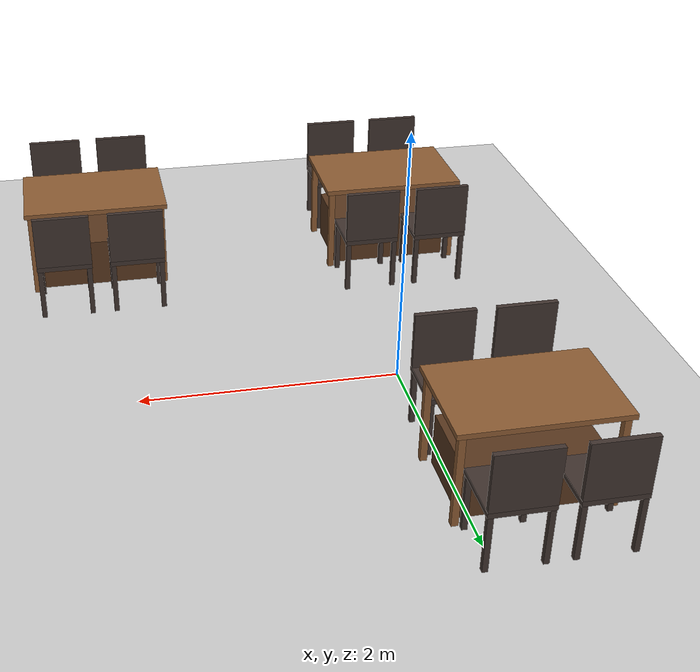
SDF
<sdf version="1.6">
 <world name="restaurant">
  <model name="ground_plane">
   <static>1</static>
   <link name="link">
    <collision name="collision">
     <geometry><plane><normal>0 0 1</normal><size>100 100</size></plane></geometry>
     <surface><friction><ode><mu>100</mu><mu2>50</mu2></ode></friction></surface>
    </collision>
    <visual name="visual">
     <cast_shadows>0</cast_shadows>
     <geometry><plane><normal>0 0 1</normal><size>100 100</size></plane></geometry>
     <material>
      <script><uri>file://media/materials/scripts/gazebo.material</uri><name>Gazebo/Grey</name></script>
     </material>
    </visual>
   </link>
  </model>
  <model name="table_3">
   <static>true</static>
   <pose>-0.4360 1.4091 0 0 0 0</pose>
   <link name="link">
    <collision name="base_collision">
     <pose>0.0000 0.0000 0.2000 0 0 0</pose>
     <geometry><box><size>1.0000 0.6000 0.4000</size></box></geometry>
    </collision>
    <visual name="base_visual">
     <pose>0.0000 0.0000 0.2000 0 0 0</pose>
     <geometry><box><size>1.0000 0.6000 0.4000</size></box></geometry>
     <material>
      <ambient>0.35 0.22 0.12 1</ambient>
      <diffuse>0.35 0.22 0.12 1</diffuse>
      <specular>0.05 0.05 0.05 1</specular>
     </material>
    </visual>
    <collision name="top_collision">
     <pose>0.0000 0.0000 0.7300 0 0 0</pose>
     <geometry><box><size>1.2000 0.8000 0.0400</size></box></geometry>
    </collision>
    <visual name="top_visual">
     <pose>0.0000 0.0000 0.7300 0 0 0</pose>
     <geometry><box><size>1.2000 0.8000 0.0400</size></box></geometry>
     <material>
      <ambient>0.55 0.36 0.2 1</ambient>
      <diffuse>0.55 0.36 0.2 1</diffuse>
      <specular>0.05 0.05 0.05 1</specular>
     </material>
    </visual>
    <collision name="leg0_collision">
     <pose>0.5500 0.3500 0.3550 0 0 0</pose>
     <geometry><box><size>0.0500 0.0500 0.7100</size></box></geometry>
    </collision>
    <visual name="leg0_visual">
     <pose>0.5500 0.3500 0.3550 0 0 0</pose>
     <geometry><box><size>0.0500 0.0500 0.7100</size></box></geometry>
     <material>
      <ambient>0.55 0.36 0.2 1</ambient>
      <diffuse>0.55 0.36 0.2 1</diffuse>
      <specular>0.05 0.05 0.05 1</specular>
     </material>
    </visual>
    <collision name="leg1_collision">
     <pose>0.5500 -0.3500 0.3550 0 0 0</pose>
     <geometry><box><size>0.0500 0.0500 0.7100</size></box></geometry>
    </collision>
    <visual name="leg1_visual">
     <pose>0.5500 -0.3500 0.3550 0 0 0</pose>
     <geometry><box><size>0.0500 0.0500 0.7100</size></box></geometry>
     <material>
      <ambient>0.55 0.36 0.2 1</ambient>
      <diffuse>0.55 0.36 0.2 1</diffuse>
      <specular>0.05 0.05 0.05 1</specular>
     </material>
    </visual>
    <collision name="leg2_collision">
     <pose>-0.5500 0.3500 0.3550 0 0 0</pose>
     <geometry><box><size>0.0500 0.0500 0.7100</size></box></geometry>
    </collision>
    <visual name="leg2_visual">
     <pose>-0.5500 0.3500 0.3550 0 0 0</pose>
     <geometry><box><size>0.0500 0.0500 0.7100</size></box></geometry>
     <material>
      <ambient>0.55 0.36 0.2 1</ambient>
      <diffuse>0.55 0.36 0.2 1</diffuse>
      <specular>0.05 0.05 0.05 1</specular>
     </material>
    </visual>
    <collision name="leg3_collision">
     <pose>-0.5500 -0.3500 0.3550 0 0 0</pose>
     <geometry><box><size>0.0500 0.0500 0.7100</size></box></geometry>
    </collision>
    <visual name="leg3_visual">
     <pose>-0.5500 -0.3500 0.3550 0 0 0</pose>
     <geometry><box><size>0.0500 0.0500 0.7100</size></box></geometry>
     <material>
      <ambient>0.55 0.36 0.2 1</ambient>
      <diffuse>0.55 0.36 0.2 1</diffuse>
      <specular>0.05 0.05 0.05 1</specular>
     </material>
    </visual>
    <collision name="chair0_seat_collision">
     <pose>-0.3000 0.6000 0.4500 0 0 0</pose>
     <geometry><box><size>0.4500 0.4500 0.0400</size></box></geometry>
    </collision>
    <visual name="chair0_seat_visual">
     <pose>-0.3000 0.6000 0.4500 0 0 0</pose>
     <geometry><box><size>0.4500 0.4500 0.0400</size></box></geometry>
     <material>
      <ambient>0.25 0.2 0.18 1</ambient>
      <diffuse>0.25 0.2 0.18 1</diffuse>
      <specular>0.05 0.05 0.05 1</specular>
     </material>
    </visual>
    <collision name="chair0_leg0_collision">
     <pose>-0.1000 0.8000 0.2150 0 0 0</pose>
     <geometry><box><size>0.0400 0.0400 0.4300</size></box></geometry>
    </collision>
    <visual name="chair0_leg0_visual">
     <pose>-0.1000 0.8000 0.2150 0 0 0</pose>
     <geometry><box><size>0.0400 0.0400 0.4300</size></box></geometry>
     <material>
      <ambient>0.25 0.2 0.18 1</ambient>
      <diffuse>0.25 0.2 0.18 1</diffuse>
      <specular>0.05 0.05 0.05 1</specular>
     </material>
    </visual>
    <collision name="chair0_leg1_collision">
     <pose>-0.1000 0.4000 0.2150 0 0 0</pose>
     <geometry><box><size>0.0400 0.0400 0.4300</size></box></geometry>
    </collision>
    <visual name="chair0_leg1_visual">
     <pose>-0.1000 0.4000 0.2150 0 0 0</pose>
     <geometry><box><size>0.0400 0.0400 0.4300</size></box></geometry>
     <material>
      <ambient>0.25 0.2 0.18 1</ambient>
      <diffuse>0.25 0.2 0.18 1</diffuse>
      <specular>0.05 0.05 0.05 1</specular>
     </material>
    </visual>
    <collision name="chair0_leg2_collision">
     <pose>-0.5000 0.8000 0.2150 0 0 0</pose>
     <geometry><box><size>0.0400 0.0400 0.4300</size></box></geometry>
    </collision>
    <visual name="chair0_leg2_visual">
     <pose>-0.5000 0.8000 0.2150 0 0 0</pose>
     <geometry><box><size>0.0400 0.0400 0.4300</size></box></geometry>
     <material>
      <ambient>0.25 0.2 0.18 1</ambient>
      <diffuse>0.25 0.2 0.18 1</diffuse>
      <specular>0.05 0.05 0.05 1</specular>
     </material>
    </visual>
    <collision name="chair0_leg3_collision">
     <pose>-0.5000 0.4000 0.2150 0 0 0</pose>
     <geometry><box><size>0.0400 0.0400 0.4300</size></box></geometry>
    </collision>
    <visual name="chair0_leg3_visual">
     <pose>-0.5000 0.4000 0.2150 0 0 0</pose>
     <geometry><box><size>0.0400 0.0400 0.4300</size></box></geometry>
     <material>
      <ambient>0.25 0.2 0.18 1</ambient>
      <diffuse>0.25 0.2 0.18 1</diffuse>
      <specular>0.05 0.05 0.05 1</specular>
     </material>
    </visual>
    <collision name="chair0_back_collision">
     <pose>-0.3000 0.8050 0.6850 0 0 0</pose>
     <geometry><box><size>0.4500 0.0400 0.4300</size></box></geometry>
    </collision>
    <visual name="chair0_back_visual">
     <pose>-0.3000 0.8050 0.6850 0 0 0</pose>
     <geometry><box><size>0.4500 0.0400 0.4300</size></box></geometry>
     <material>
      <ambient>0.25 0.2 0.18 1</ambient>
      <diffuse>0.25 0.2 0.18 1</diffuse>
      <specular>0.05 0.05 0.05 1</specular>
     </material>
    </visual>
    <collision name="chair1_seat_collision">
     <pose>-0.3000 -0.6000 0.4500 0 0 0</pose>
     <geometry><box><size>0.4500 0.4500 0.0400</size></box></geometry>
    </collision>
    <visual name="chair1_seat_visual">
     <pose>-0.3000 -0.6000 0.4500 0 0 0</pose>
     <geometry><box><size>0.4500 0.4500 0.0400</size></box></geometry>
     <material>
      <ambient>0.25 0.2 0.18 1</ambient>
      <diffuse>0.25 0.2 0.18 1</diffuse>
      <specular>0.05 0.05 0.05 1</specular>
     </material>
    </visual>
    <collision name="chair1_leg0_collision">
     <pose>-0.1000 -0.4000 0.2150 0 0 0</pose>
     <geometry><box><size>0.0400 0.0400 0.4300</size></box></geometry>
    </collision>
    <visual name="chair1_leg0_visual">
     <pose>-0.1000 -0.4000 0.2150 0 0 0</pose>
     <geometry><box><size>0.0400 0.0400 0.4300</size></box></geometry>
     <material>
      <ambient>0.25 0.2 0.18 1</ambient>
      <diffuse>0.25 0.2 0.18 1</diffuse>
      <specular>0.05 0.05 0.05 1</specular>
     </material>
    </visual>
    <collision name="chair1_leg1_collision">
     <pose>-0.1000 -0.8000 0.2150 0 0 0</pose>
     <geometry><box><size>0.0400 0.0400 0.4300</size></box></geometry>
    </collision>
    <visual name="chair1_leg1_visual">
     <pose>-0.1000 -0.8000 0.2150 0 0 0</pose>
     <geometry><box><size>0.0400 0.0400 0.4300</size></box></geometry>
     <material>
      <ambient>0.25 0.2 0.18 1</ambient>
      <diffuse>0.25 0.2 0.18 1</diffuse>
      <specular>0.05 0.05 0.05 1</specular>
     </material>
    </visual>
    <collision name="chair1_leg2_collision">
     <pose>-0.5000 -0.4000 0.2150 0 0 0</pose>
     <geometry><box><size>0.0400 0.0400 0.4300</size></box></geometry>
    </collision>
    <visual name="chair1_leg2_visual">
     <pose>-0.5000 -0.4000 0.2150 0 0 0</pose>
     <geometry><box><size>0.0400 0.0400 0.4300</size></box></geometry>
     <material>
      <ambient>0.25 0.2 0.18 1</ambient>
      <diffuse>0.25 0.2 0.18 1</diffuse>
      <specular>0.05 0.05 0.05 1</specular>
     </material>
    </visual>
    <collision name="chair1_leg3_collision">
     <pose>-0.5000 -0.8000 0.2150 0 0 0</pose>
     <geometry><box><size>0.0400 0.0400 0.4300</size></box></geometry>
    </collision>
    <visual name="chair1_leg3_visual">
     <pose>-0.5000 -0.8000 0.2150 0 0 0</pose>
     <geometry><box><size>0.0400 0.0400 0.4300</size></box></geometry>
     <material>
      <ambient>0.25 0.2 0.18 1</ambient>
      <diffuse>0.25 0.2 0.18 1</diffuse>
      <specular>0.05 0.05 0.05 1</specular>
     </material>
    </visual>
    <collision name="chair1_back_collision">
     <pose>-0.3000 -0.8050 0.6850 0 0 0</pose>
     <geometry><box><size>0.4500 0.0400 0.4300</size></box></geometry>
    </collision>
    <visual name="chair1_back_visual">
     <pose>-0.3000 -0.8050 0.6850 0 0 0</pose>
     <geometry><box><size>0.4500 0.0400 0.4300</size></box></geometry>
     <material>
      <ambient>0.25 0.2 0.18 1</ambient>
      <diffuse>0.25 0.2 0.18 1</diffuse>
      <specular>0.05 0.05 0.05 1</specular>
     </material>
    </visual>
    <collision name="chair2_seat_collision">
     <pose>0.3000 0.6000 0.4500 0 0 0</pose>
     <geometry><box><size>0.4500 0.4500 0.0400</size></box></geometry>
    </collision>
    <visual name="chair2_seat_visual">
     <pose>0.3000 0.6000 0.4500 0 0 0</pose>
     <geometry><box><size>0.4500 0.4500 0.0400</size></box></geometry>
     <material>
      <ambient>0.25 0.2 0.18 1</ambient>
      <diffuse>0.25 0.2 0.18 1</diffuse>
      <specular>0.05 0.05 0.05 1</specular>
     </material>
    </visual>
    <collision name="chair2_leg0_collision">
     <pose>0.5000 0.8000 0.2150 0 0 0</pose>
     <geometry><box><size>0.0400 0.0400 0.4300</size></box></geometry>
    </collision>
    <visual name="chair2_leg0_visual">
     <pose>0.5000 0.8000 0.2150 0 0 0</pose>
     <geometry><box><size>0.0400 0.0400 0.4300</size></box></geometry>
     <material>
      <ambient>0.25 0.2 0.18 1</ambient>
      <diffuse>0.25 0.2 0.18 1</diffuse>
      <specular>0.05 0.05 0.05 1</specular>
     </material>
    </visual>
    <collision name="chair2_leg1_collision">
     <pose>0.5000 0.4000 0.2150 0 0 0</pose>
     <geometry><box><size>0.0400 0.0400 0.4300</size></box></geometry>
    </collision>
    <visual name="chair2_leg1_visual">
     <pose>0.5000 0.4000 0.2150 0 0 0</pose>
     <geometry><box><size>0.0400 0.0400 0.4300</size></box></geometry>
     <material>
      <ambient>0.25 0.2 0.18 1</ambient>
      <diffuse>0.25 0.2 0.18 1</diffuse>
      <specular>0.05 0.05 0.05 1</specular>
     </material>
    </visual>
    <collision name="chair2_leg2_collision">
     <pose>0.1000 0.8000 0.2150 0 0 0</pose>
     <geometry><box><size>0.0400 0.0400 0.4300</size></box></geometry>
    </collision>
    <visual name="chair2_leg2_visual">
     <pose>0.1000 0.8000 0.2150 0 0 0</pose>
     <geometry><box><size>0.0400 0.0400 0.4300</size></box></geometry>
     <material>
      <ambient>0.25 0.2 0.18 1</ambient>
      <diffuse>0.25 0.2 0.18 1</diffuse>
      <specular>0.05 0.05 0.05 1</specular>
     </material>
    </visual>
    <collision name="chair2_leg3_collision">
     <pose>0.1000 0.4000 0.2150 0 0 0</pose>
     <geometry><box><size>0.0400 0.0400 0.4300</size></box></geometry>
    </collision>
    <visual name="chair2_leg3_visual">
     <pose>0.1000 0.4000 0.2150 0 0 0</pose>
     <geometry><box><size>0.0400 0.0400 0.4300</size></box></geometry>
     <material>
      <ambient>0.25 0.2 0.18 1</ambient>
      <diffuse>0.25 0.2 0.18 1</diffuse>
      <specular>0.05 0.05 0.05 1</specular>
     </material>
    </visual>
    <collision name="chair2_back_collision">
     <pose>0.3000 0.8050 0.6850 0 0 0</pose>
     <geometry><box><size>0.4500 0.0400 0.4300</size></box></geometry>
    </collision>
    <visual name="chair2_back_visual">
     <pose>0.3000 0.8050 0.6850 0 0 0</pose>
     <geometry><box><size>0.4500 0.0400 0.4300</size></box></geometry>
     <material>
      <ambient>0.25 0.2 0.18 1</ambient>
      <diffuse>0.25 0.2 0.18 1</diffuse>
      <specular>0.05 0.05 0.05 1</specular>
     </material>
    </visual>
    <collision name="chair3_seat_collision">
     <pose>0.3000 -0.6000 0.4500 0 0 0</pose>
     <geometry><box><size>0.4500 0.4500 0.0400</size></box></geometry>
    </collision>
    <visual name="chair3_seat_visual">
     <pose>0.3000 -0.6000 0.4500 0 0 0</pose>
     <geometry><box><size>0.4500 0.4500 0.0400</size></box></geometry>
     <material>
      <ambient>0.25 0.2 0.18 1</ambient>
      <diffuse>0.25 0.2 0.18 1</diffuse>
      <specular>0.05 0.05 0.05 1</specular>
     </material>
    </visual>
    <collision name="chair3_leg0_collision">
     <pose>0.5000 -0.4000 0.2150 0 0 0</pose>
     <geometry><box><size>0.0400 0.0400 0.4300</size></box></geometry>
    </collision>
    <visual name="chair3_leg0_visual">
     <pose>0.5000 -0.4000 0.2150 0 0 0</pose>
     <geometry><box><size>0.0400 0.0400 0.4300</size></box></geometry>
     <material>
      <ambient>0.25 0.2 0.18 1</ambient>
      <diffuse>0.25 0.2 0.18 1</diffuse>
      <specular>0.05 0.05 0.05 1</specular>
     </material>
    </visual>
    <collision name="chair3_leg1_collision">
     <pose>0.5000 -0.8000 0.2150 0 0 0</pose>
     <geometry><box><size>0.0400 0.0400 0.4300</size></box></geometry>
    </collision>
    <visual name="chair3_leg1_visual">
     <pose>0.5000 -0.8000 0.2150 0 0 0</pose>
     <geometry><box><size>0.0400 0.0400 0.4300</size></box></geometry>
     <material>
      <ambient>0.25 0.2 0.18 1</ambient>
      <diffuse>0.25 0.2 0.18 1</diffuse>
      <specular>0.05 0.05 0.05 1</specular>
     </material>
    </visual>
    <collision name="chair3_leg2_collision">
     <pose>0.1000 -0.4000 0.2150 0 0 0</pose>
     <geometry><box><size>0.0400 0.0400 0.4300</size></box></geometry>
    </collision>
    <visual name="chair3_leg2_visual">
     <pose>0.1000 -0.4000 0.2150 0 0 0</pose>
     <geometry><box><size>0.0400 0.0400 0.4300</size></box></geometry>
     <material>
      <ambient>0.25 0.2 0.18 1</ambient>
      <diffuse>0.25 0.2 0.18 1</diffuse>
      <specular>0.05 0.05 0.05 1</specular>
     </material>
    </visual>
    <collision name="chair3_leg3_collision">
     <pose>0.1000 -0.8000 0.2150 0 0 0</pose>
     <geometry><box><size>0.0400 0.0400 0.4300</size></box></geometry>
    </collision>
    <visual name="chair3_leg3_visual">
     <pose>0.1000 -0.8000 0.2150 0 0 0</pose>
     <geometry><box><size>0.0400 0.0400 0.4300</size></box></geometry>
     <material>
      <ambient>0.25 0.2 0.18 1</ambient>
      <diffuse>0.25 0.2 0.18 1</diffuse>
      <specular>0.05 0.05 0.05 1</specular>
     </material>
    </visual>
    <collision name="chair3_back_collision">
     <pose>0.3000 -0.8050 0.6850 0 0 0</pose>
     <geometry><box><size>0.4500 0.0400 0.4300</size></box></geometry>
    </collision>
    <visual name="chair3_back_visual">
     <pose>0.3000 -0.8050 0.6850 0 0 0</pose>
     <geometry><box><size>0.4500 0.0400 0.4300</size></box></geometry>
     <material>
      <ambient>0.25 0.2 0.18 1</ambient>
      <diffuse>0.25 0.2 0.18 1</diffuse>
      <specular>0.05 0.05 0.05 1</specular>
     </material>
    </visual>
   </link>
  </model>
  <model name="table_9">
   <static>true</static>
   <pose>-0.4360 -2.1909 0 0 0 0</pose>
   <link name="link">
    <collision name="base_collision">
     <pose>0.0000 0.0000 0.2000 0 0 0</pose>
     <geometry><box><size>1.0000 0.6000 0.4000</size></box></geometry>
    </collision>
    <visual name="base_visual">
     <pose>0.0000 0.0000 0.2000 0 0 0</pose>
     <geometry><box><size>1.0000 0.6000 0.4000</size></box></geometry>
     <material>
      <ambient>0.35 0.22 0.12 1</ambient>
      <diffuse>0.35 0.22 0.12 1</diffuse>
      <specular>0.05 0.05 0.05 1</specular>
     </material>
    </visual>
    <collision name="top_collision">
     <pose>0.0000 0.0000 0.7300 0 0 0</pose>
     <geometry><box><size>1.2000 0.8000 0.0400</size></box></geometry>
    </collision>
    <visual name="top_visual">
     <pose>0.0000 0.0000 0.7300 0 0 0</pose>
     <geometry><box><size>1.2000 0.8000 0.0400</size></box></geometry>
     <material>
      <ambient>0.55 0.36 0.2 1</ambient>
      <diffuse>0.55 0.36 0.2 1</diffuse>
      <specular>0.05 0.05 0.05 1</specular>
     </material>
    </visual>
    <collision name="leg0_collision">
     <pose>0.5500 0.3500 0.3550 0 0 0</pose>
     <geometry><box><size>0.0500 0.0500 0.7100</size></box></geometry>
    </collision>
    <visual name="leg0_visual">
     <pose>0.5500 0.3500 0.3550 0 0 0</pose>
     <geometry><box><size>0.0500 0.0500 0.7100</size></box></geometry>
     <material>
      <ambient>0.55 0.36 0.2 1</ambient>
      <diffuse>0.55 0.36 0.2 1</diffuse>
      <specular>0.05 0.05 0.05 1</specular>
     </material>
    </visual>
    <collision name="leg1_collision">
     <pose>0.5500 -0.3500 0.3550 0 0 0</pose>
     <geometry><box><size>0.0500 0.0500 0.7100</size></box></geometry>
    </collision>
    <visual name="leg1_visual">
     <pose>0.5500 -0.3500 0.3550 0 0 0</pose>
     <geometry><box><size>0.0500 0.0500 0.7100</size></box></geometry>
     <material>
      <ambient>0.55 0.36 0.2 1</ambient>
      <diffuse>0.55 0.36 0.2 1</diffuse>
      <specular>0.05 0.05 0.05 1</specular>
     </material>
    </visual>
    <collision name="leg2_collision">
     <pose>-0.5500 0.3500 0.3550 0 0 0</pose>
     <geometry><box><size>0.0500 0.0500 0.7100</size></box></geometry>
    </collision>
    <visual name="leg2_visual">
     <pose>-0.5500 0.3500 0.3550 0 0 0</pose>
     <geometry><box><size>0.0500 0.0500 0.7100</size></box></geometry>
     <material>
      <ambient>0.55 0.36 0.2 1</ambient>
      <diffuse>0.55 0.36 0.2 1</diffuse>
      <specular>0.05 0.05 0.05 1</specular>
     </material>
    </visual>
    <collision name="leg3_collision">
     <pose>-0.5500 -0.3500 0.3550 0 0 0</pose>
     <geometry><box><size>0.0500 0.0500 0.7100</size></box></geometry>
    </collision>
    <visual name="leg3_visual">
     <pose>-0.5500 -0.3500 0.3550 0 0 0</pose>
     <geometry><box><size>0.0500 0.0500 0.7100</size></box></geometry>
     <material>
      <ambient>0.55 0.36 0.2 1</ambient>
      <diffuse>0.55 0.36 0.2 1</diffuse>
      <specular>0.05 0.05 0.05 1</specular>
     </material>
    </visual>
    <collision name="chair0_seat_collision">
     <pose>-0.3000 0.6000 0.4500 0 0 0</pose>
     <geometry><box><size>0.4500 0.4500 0.0400</size></box></geometry>
    </collision>
    <visual name="chair0_seat_visual">
     <pose>-0.3000 0.6000 0.4500 0 0 0</pose>
     <geometry><box><size>0.4500 0.4500 0.0400</size></box></geometry>
     <material>
      <ambient>0.25 0.2 0.18 1</ambient>
      <diffuse>0.25 0.2 0.18 1</diffuse>
      <specular>0.05 0.05 0.05 1</specular>
     </material>
    </visual>
    <collision name="chair0_leg0_collision">
     <pose>-0.1000 0.8000 0.2150 0 0 0</pose>
     <geometry><box><size>0.0400 0.0400 0.4300</size></box></geometry>
    </collision>
    <visual name="chair0_leg0_visual">
     <pose>-0.1000 0.8000 0.2150 0 0 0</pose>
     <geometry><box><size>0.0400 0.0400 0.4300</size></box></geometry>
     <material>
      <ambient>0.25 0.2 0.18 1</ambient>
      <diffuse>0.25 0.2 0.18 1</diffuse>
      <specular>0.05 0.05 0.05 1</specular>
     </material>
    </visual>
    <collision name="chair0_leg1_collision">
     <pose>-0.1000 0.4000 0.2150 0 0 0</pose>
     <geometry><box><size>0.0400 0.0400 0.4300</size></box></geometry>
    </collision>
    <visual name="chair0_leg1_visual">
     <pose>-0.1000 0.4000 0.2150 0 0 0</pose>
     <geometry><box><size>0.0400 0.0400 0.4300</size></box></geometry>
     <material>
      <ambient>0.25 0.2 0.18 1</ambient>
      <diffuse>0.25 0.2 0.18 1</diffuse>
      <specular>0.05 0.05 0.05 1</specular>
     </material>
    </visual>
    <collision name="chair0_leg2_collision">
     <pose>-0.5000 0.8000 0.2150 0 0 0</pose>
     <geometry><box><size>0.0400 0.0400 0.4300</size></box></geometry>
    </collision>
    <visual name="chair0_leg2_visual">
     <pose>-0.5000 0.8000 0.2150 0 0 0</pose>
     <geometry><box><size>0.0400 0.0400 0.4300</size></box></geometry>
     <material>
      <ambient>0.25 0.2 0.18 1</ambient>
      <diffuse>0.25 0.2 0.18 1</diffuse>
      <specular>0.05 0.05 0.05 1</specular>
     </material>
    </visual>
    <collision name="chair0_leg3_collision">
     <pose>-0.5000 0.4000 0.2150 0 0 0</pose>
     <geometry><box><size>0.0400 0.0400 0.4300</size></box></geometry>
    </collision>
    <visual name="chair0_leg3_visual">
     <pose>-0.5000 0.4000 0.2150 0 0 0</pose>
     <geometry><box><size>0.0400 0.0400 0.4300</size></box></geometry>
     <material>
      <ambient>0.25 0.2 0.18 1</ambient>
      <diffuse>0.25 0.2 0.18 1</diffuse>
      <specular>0.05 0.05 0.05 1</specular>
     </material>
    </visual>
    <collision name="chair0_back_collision">
     <pose>-0.3000 0.8050 0.6850 0 0 0</pose>
     <geometry><box><size>0.4500 0.0400 0.4300</size></box></geometry>
    </collision>
    <visual name="chair0_back_visual">
     <pose>-0.3000 0.8050 0.6850 0 0 0</pose>
     <geometry><box><size>0.4500 0.0400 0.4300</size></box></geometry>
     <material>
      <ambient>0.25 0.2 0.18 1</ambient>
      <diffuse>0.25 0.2 0.18 1</diffuse>
      <specular>0.05 0.05 0.05 1</specular>
     </material>
    </visual>
    <collision name="chair1_seat_collision">
     <pose>-0.3000 -0.6000 0.4500 0 0 0</pose>
     <geometry><box><size>0.4500 0.4500 0.0400</size></box></geometry>
    </collision>
    <visual name="chair1_seat_visual">
     <pose>-0.3000 -0.6000 0.4500 0 0 0</pose>
     <geometry><box><size>0.4500 0.4500 0.0400</size></box></geometry>
     <material>
      <ambient>0.25 0.2 0.18 1</ambient>
      <diffuse>0.25 0.2 0.18 1</diffuse>
      <specular>0.05 0.05 0.05 1</specular>
     </material>
    </visual>
    <collision name="chair1_leg0_collision">
     <pose>-0.1000 -0.4000 0.2150 0 0 0</pose>
     <geometry><box><size>0.0400 0.0400 0.4300</size></box></geometry>
    </collision>
    <visual name="chair1_leg0_visual">
     <pose>-0.1000 -0.4000 0.2150 0 0 0</pose>
     <geometry><box><size>0.0400 0.0400 0.4300</size></box></geometry>
     <material>
      <ambient>0.25 0.2 0.18 1</ambient>
      <diffuse>0.25 0.2 0.18 1</diffuse>
      <specular>0.05 0.05 0.05 1</specular>
     </material>
    </visual>
    <collision name="chair1_leg1_collision">
     <pose>-0.1000 -0.8000 0.2150 0 0 0</pose>
     <geometry><box><size>0.0400 0.0400 0.4300</size></box></geometry>
    </collision>
    <visual name="chair1_leg1_visual">
     <pose>-0.1000 -0.8000 0.2150 0 0 0</pose>
     <geometry><box><size>0.0400 0.0400 0.4300</size></box></geometry>
     <material>
      <ambient>0.25 0.2 0.18 1</ambient>
      <diffuse>0.25 0.2 0.18 1</diffuse>
      <specular>0.05 0.05 0.05 1</specular>
     </material>
    </visual>
    <collision name="chair1_leg2_collision">
     <pose>-0.5000 -0.4000 0.2150 0 0 0</pose>
     <geometry><box><size>0.0400 0.0400 0.4300</size></box></geometry>
    </collision>
    <visual name="chair1_leg2_visual">
     <pose>-0.5000 -0.4000 0.2150 0 0 0</pose>
     <geometry><box><size>0.0400 0.0400 0.4300</size></box></geometry>
     <material>
      <ambient>0.25 0.2 0.18 1</ambient>
      <diffuse>0.25 0.2 0.18 1</diffuse>
      <specular>0.05 0.05 0.05 1</specular>
     </material>
    </visual>
    <collision name="chair1_leg3_collision">
     <pose>-0.5000 -0.8000 0.2150 0 0 0</pose>
     <geometry><box><size>0.0400 0.0400 0.4300</size></box></geometry>
    </collision>
    <visual name="chair1_leg3_visual">
     <pose>-0.5000 -0.8000 0.2150 0 0 0</pose>
     <geometry><box><size>0.0400 0.0400 0.4300</size></box></geometry>
     <material>
      <ambient>0.25 0.2 0.18 1</ambient>
      <diffuse>0.25 0.2 0.18 1</diffuse>
      <specular>0.05 0.05 0.05 1</specular>
     </material>
    </visual>
    <collision name="chair1_back_collision">
     <pose>-0.3000 -0.8050 0.6850 0 0 0</pose>
     <geometry><box><size>0.4500 0.0400 0.4300</size></box></geometry>
    </collision>
    <visual name="chair1_back_visual">
     <pose>-0.3000 -0.8050 0.6850 0 0 0</pose>
     <geometry><box><size>0.4500 0.0400 0.4300</size></box></geometry>
     <material>
      <ambient>0.25 0.2 0.18 1</ambient>
      <diffuse>0.25 0.2 0.18 1</diffuse>
      <specular>0.05 0.05 0.05 1</specular>
     </material>
    </visual>
    <collision name="chair2_seat_collision">
     <pose>0.3000 0.6000 0.4500 0 0 0</pose>
     <geometry><box><size>0.4500 0.4500 0.0400</size></box></geometry>
    </collision>
    <visual name="chair2_seat_visual">
     <pose>0.3000 0.6000 0.4500 0 0 0</pose>
     <geometry><box><size>0.4500 0.4500 0.0400</size></box></geometry>
     <material>
      <ambient>0.25 0.2 0.18 1</ambient>
      <diffuse>0.25 0.2 0.18 1</diffuse>
      <specular>0.05 0.05 0.05 1</specular>
     </material>
    </visual>
    <collision name="chair2_leg0_collision">
     <pose>0.5000 0.8000 0.2150 0 0 0</pose>
     <geometry><box><size>0.0400 0.0400 0.4300</size></box></geometry>
    </collision>
    <visual name="chair2_leg0_visual">
     <pose>0.5000 0.8000 0.2150 0 0 0</pose>
     <geometry><box><size>0.0400 0.0400 0.4300</size></box></geometry>
     <material>
      <ambient>0.25 0.2 0.18 1</ambient>
      <diffuse>0.25 0.2 0.18 1</diffuse>
      <specular>0.05 0.05 0.05 1</specular>
     </material>
    </visual>
    <collision name="chair2_leg1_collision">
     <pose>0.5000 0.4000 0.2150 0 0 0</pose>
     <geometry><box><size>0.0400 0.0400 0.4300</size></box></geometry>
    </collision>
    <visual name="chair2_leg1_visual">
     <pose>0.5000 0.4000 0.2150 0 0 0</pose>
     <geometry><box><size>0.0400 0.0400 0.4300</size></box></geometry>
     <material>
      <ambient>0.25 0.2 0.18 1</ambient>
      <diffuse>0.25 0.2 0.18 1</diffuse>
      <specular>0.05 0.05 0.05 1</specular>
     </material>
    </visual>
    <collision name="chair2_leg2_collision">
     <pose>0.1000 0.8000 0.2150 0 0 0</pose>
     <geometry><box><size>0.0400 0.0400 0.4300</size></box></geometry>
    </collision>
    <visual name="chair2_leg2_visual">
     <pose>0.1000 0.8000 0.2150 0 0 0</pose>
     <geometry><box><size>0.0400 0.0400 0.4300</size></box></geometry>
     <material>
      <ambient>0.25 0.2 0.18 1</ambient>
      <diffuse>0.25 0.2 0.18 1</diffuse>
      <specular>0.05 0.05 0.05 1</specular>
     </material>
    </visual>
    <collision name="chair2_leg3_collision">
     <pose>0.1000 0.4000 0.2150 0 0 0</pose>
     <geometry><box><size>0.0400 0.0400 0.4300</size></box></geometry>
    </collision>
    <visual name="chair2_leg3_visual">
     <pose>0.1000 0.4000 0.2150 0 0 0</pose>
     <geometry><box><size>0.0400 0.0400 0.4300</size></box></geometry>
     <material>
      <ambient>0.25 0.2 0.18 1</ambient>
      <diffuse>0.25 0.2 0.18 1</diffuse>
      <specular>0.05 0.05 0.05 1</specular>
     </material>
    </visual>
    <collision name="chair2_back_collision">
     <pose>0.3000 0.8050 0.6850 0 0 0</pose>
     <geometry><box><size>0.4500 0.0400 0.4300</size></box></geometry>
    </collision>
    <visual name="chair2_back_visual">
     <pose>0.3000 0.8050 0.6850 0 0 0</pose>
     <geometry><box><size>0.4500 0.0400 0.4300</size></box></geometry>
     <material>
      <ambient>0.25 0.2 0.18 1</ambient>
      <diffuse>0.25 0.2 0.18 1</diffuse>
      <specular>0.05 0.05 0.05 1</specular>
     </material>
    </visual>
    <collision name="chair3_seat_collision">
     <pose>0.3000 -0.6000 0.4500 0 0 0</pose>
     <geometry><box><size>0.4500 0.4500 0.0400</size></box></geometry>
    </collision>
    <visual name="chair3_seat_visual">
     <pose>0.3000 -0.6000 0.4500 0 0 0</pose>
     <geometry><box><size>0.4500 0.4500 0.0400</size></box></geometry>
     <material>
      <ambient>0.25 0.2 0.18 1</ambient>
      <diffuse>0.25 0.2 0.18 1</diffuse>
      <specular>0.05 0.05 0.05 1</specular>
     </material>
    </visual>
    <collision name="chair3_leg0_collision">
     <pose>0.5000 -0.4000 0.2150 0 0 0</pose>
     <geometry><box><size>0.0400 0.0400 0.4300</size></box></geometry>
    </collision>
    <visual name="chair3_leg0_visual">
     <pose>0.5000 -0.4000 0.2150 0 0 0</pose>
     <geometry><box><size>0.0400 0.0400 0.4300</size></box></geometry>
     <material>
      <ambient>0.25 0.2 0.18 1</ambient>
      <diffuse>0.25 0.2 0.18 1</diffuse>
      <specular>0.05 0.05 0.05 1</specular>
     </material>
    </visual>
    <collision name="chair3_leg1_collision">
     <pose>0.5000 -0.8000 0.2150 0 0 0</pose>
     <geometry><box><size>0.0400 0.0400 0.4300</size></box></geometry>
    </collision>
    <visual name="chair3_leg1_visual">
     <pose>0.5000 -0.8000 0.2150 0 0 0</pose>
     <geometry><box><size>0.0400 0.0400 0.4300</size></box></geometry>
     <material>
      <ambient>0.25 0.2 0.18 1</ambient>
      <diffuse>0.25 0.2 0.18 1</diffuse>
      <specular>0.05 0.05 0.05 1</specular>
     </material>
    </visual>
    <collision name="chair3_leg2_collision">
     <pose>0.1000 -0.4000 0.2150 0 0 0</pose>
     <geometry><box><size>0.0400 0.0400 0.4300</size></box></geometry>
    </collision>
    <visual name="chair3_leg2_visual">
     <pose>0.1000 -0.4000 0.2150 0 0 0</pose>
     <geometry><box><size>0.0400 0.0400 0.4300</size></box></geometry>
     <material>
      <ambient>0.25 0.2 0.18 1</ambient>
      <diffuse>0.25 0.2 0.18 1</diffuse>
      <specular>0.05 0.05 0.05 1</specular>
     </material>
    </visual>
    <collision name="chair3_leg3_collision">
     <pose>0.1000 -0.8000 0.2150 0 0 0</pose>
     <geometry><box><size>0.0400 0.0400 0.4300</size></box></geometry>
    </collision>
    <visual name="chair3_leg3_visual">
     <pose>0.1000 -0.8000 0.2150 0 0 0</pose>
     <geometry><box><size>0.0400 0.0400 0.4300</size></box></geometry>
     <material>
      <ambient>0.25 0.2 0.18 1</ambient>
      <diffuse>0.25 0.2 0.18 1</diffuse>
      <specular>0.05 0.05 0.05 1</specular>
     </material>
    </visual>
    <collision name="chair3_back_collision">
     <pose>0.3000 -0.8050 0.6850 0 0 0</pose>
     <geometry><box><size>0.4500 0.0400 0.4300</size></box></geometry>
    </collision>
    <visual name="chair3_back_visual">
     <pose>0.3000 -0.8050 0.6850 0 0 0</pose>
     <geometry><box><size>0.4500 0.0400 0.4300</size></box></geometry>
     <material>
      <ambient>0.25 0.2 0.18 1</ambient>
      <diffuse>0.25 0.2 0.18 1</diffuse>
      <specular>0.05 0.05 0.05 1</specular>
     </material>
    </visual>
   </link>
  </model>
  <model name="table_10">
   <static>true</static>
   <pose>2.1640 -2.1909 0 0 0 0</pose>
   <link name="link">
    <collision name="base_collision">
     <pose>0.0000 0.0000 0.2000 0 0 0</pose>
     <geometry><box><size>1.0000 0.6000 0.4000</size></box></geometry>
    </collision>
    <visual name="base_visual">
     <pose>0.0000 0.0000 0.2000 0 0 0</pose>
     <geometry><box><size>1.0000 0.6000 0.4000</size></box></geometry>
     <material>
      <ambient>0.35 0.22 0.12 1</ambient>
      <diffuse>0.35 0.22 0.12 1</diffuse>
      <specular>0.05 0.05 0.05 1</specular>
     </material>
    </visual>
    <collision name="top_collision">
     <pose>0.0000 0.0000 0.7300 0 0 0</pose>
     <geometry><box><size>1.2000 0.8000 0.0400</size></box></geometry>
    </collision>
    <visual name="top_visual">
     <pose>0.0000 0.0000 0.7300 0 0 0</pose>
     <geometry><box><size>1.2000 0.8000 0.0400</size></box></geometry>
     <material>
      <ambient>0.55 0.36 0.2 1</ambient>
      <diffuse>0.55 0.36 0.2 1</diffuse>
      <specular>0.05 0.05 0.05 1</specular>
     </material>
    </visual>
    <collision name="leg0_collision">
     <pose>0.5500 0.3500 0.3550 0 0 0</pose>
     <geometry><box><size>0.0500 0.0500 0.7100</size></box></geometry>
    </collision>
    <visual name="leg0_visual">
     <pose>0.5500 0.3500 0.3550 0 0 0</pose>
     <geometry><box><size>0.0500 0.0500 0.7100</size></box></geometry>
     <material>
      <ambient>0.55 0.36 0.2 1</ambient>
      <diffuse>0.55 0.36 0.2 1</diffuse>
      <specular>0.05 0.05 0.05 1</specular>
     </material>
    </visual>
    <collision name="leg1_collision">
     <pose>0.5500 -0.3500 0.3550 0 0 0</pose>
     <geometry><box><size>0.0500 0.0500 0.7100</size></box></geometry>
    </collision>
    <visual name="leg1_visual">
     <pose>0.5500 -0.3500 0.3550 0 0 0</pose>
     <geometry><box><size>0.0500 0.0500 0.7100</size></box></geometry>
     <material>
      <ambient>0.55 0.36 0.2 1</ambient>
      <diffuse>0.55 0.36 0.2 1</diffuse>
      <specular>0.05 0.05 0.05 1</specular>
     </material>
    </visual>
    <collision name="leg2_collision">
     <pose>-0.5500 0.3500 0.3550 0 0 0</pose>
     <geometry><box><size>0.0500 0.0500 0.7100</size></box></geometry>
    </collision>
    <visual name="leg2_visual">
     <pose>-0.5500 0.3500 0.3550 0 0 0</pose>
     <geometry><box><size>0.0500 0.0500 0.7100</size></box></geometry>
     <material>
      <ambient>0.55 0.36 0.2 1</ambient>
      <diffuse>0.55 0.36 0.2 1</diffuse>
      <specular>0.05 0.05 0.05 1</specular>
     </material>
    </visual>
    <collision name="leg3_collision">
     <pose>-0.5500 -0.3500 0.3550 0 0 0</pose>
     <geometry><box><size>0.0500 0.0500 0.7100</size></box></geometry>
    </collision>
    <visual name="leg3_visual">
     <pose>-0.5500 -0.3500 0.3550 0 0 0</pose>
     <geometry><box><size>0.0500 0.0500 0.7100</size></box></geometry>
     <material>
      <ambient>0.55 0.36 0.2 1</ambient>
      <diffuse>0.55 0.36 0.2 1</diffuse>
      <specular>0.05 0.05 0.05 1</specular>
     </material>
    </visual>
    <collision name="chair0_seat_collision">
     <pose>-0.3000 0.6000 0.4500 0 0 0</pose>
     <geometry><box><size>0.4500 0.4500 0.0400</size></box></geometry>
    </collision>
    <visual name="chair0_seat_visual">
     <pose>-0.3000 0.6000 0.4500 0 0 0</pose>
     <geometry><box><size>0.4500 0.4500 0.0400</size></box></geometry>
     <material>
      <ambient>0.25 0.2 0.18 1</ambient>
      <diffuse>0.25 0.2 0.18 1</diffuse>
      <specular>0.05 0.05 0.05 1</specular>
     </material>
    </visual>
    <collision name="chair0_leg0_collision">
     <pose>-0.1000 0.8000 0.2150 0 0 0</pose>
     <geometry><box><size>0.0400 0.0400 0.4300</size></box></geometry>
    </collision>
    <visual name="chair0_leg0_visual">
     <pose>-0.1000 0.8000 0.2150 0 0 0</pose>
     <geometry><box><size>0.0400 0.0400 0.4300</size></box></geometry>
     <material>
      <ambient>0.25 0.2 0.18 1</ambient>
      <diffuse>0.25 0.2 0.18 1</diffuse>
      <specular>0.05 0.05 0.05 1</specular>
     </material>
    </visual>
    <collision name="chair0_leg1_collision">
     <pose>-0.1000 0.4000 0.2150 0 0 0</pose>
     <geometry><box><size>0.0400 0.0400 0.4300</size></box></geometry>
    </collision>
    <visual name="chair0_leg1_visual">
     <pose>-0.1000 0.4000 0.2150 0 0 0</pose>
     <geometry><box><size>0.0400 0.0400 0.4300</size></box></geometry>
     <material>
      <ambient>0.25 0.2 0.18 1</ambient>
      <diffuse>0.25 0.2 0.18 1</diffuse>
      <specular>0.05 0.05 0.05 1</specular>
     </material>
    </visual>
    <collision name="chair0_leg2_collision">
     <pose>-0.5000 0.8000 0.2150 0 0 0</pose>
     <geometry><box><size>0.0400 0.0400 0.4300</size></box></geometry>
    </collision>
    <visual name="chair0_leg2_visual">
     <pose>-0.5000 0.8000 0.2150 0 0 0</pose>
     <geometry><box><size>0.0400 0.0400 0.4300</size></box></geometry>
     <material>
      <ambient>0.25 0.2 0.18 1</ambient>
      <diffuse>0.25 0.2 0.18 1</diffuse>
      <specular>0.05 0.05 0.05 1</specular>
     </material>
    </visual>
    <collision name="chair0_leg3_collision">
     <pose>-0.5000 0.4000 0.2150 0 0 0</pose>
     <geometry><box><size>0.0400 0.0400 0.4300</size></box></geometry>
    </collision>
    <visual name="chair0_leg3_visual">
     <pose>-0.5000 0.4000 0.2150 0 0 0</pose>
     <geometry><box><size>0.0400 0.0400 0.4300</size></box></geometry>
     <material>
      <ambient>0.25 0.2 0.18 1</ambient>
      <diffuse>0.25 0.2 0.18 1</diffuse>
      <specular>0.05 0.05 0.05 1</specular>
     </material>
    </visual>
    <collision name="chair0_back_collision">
     <pose>-0.3000 0.8050 0.6850 0 0 0</pose>
     <geometry><box><size>0.4500 0.0400 0.4300</size></box></geometry>
    </collision>
    <visual name="chair0_back_visual">
     <pose>-0.3000 0.8050 0.6850 0 0 0</pose>
     <geometry><box><size>0.4500 0.0400 0.4300</size></box></geometry>
     <material>
      <ambient>0.25 0.2 0.18 1</ambient>
      <diffuse>0.25 0.2 0.18 1</diffuse>
      <specular>0.05 0.05 0.05 1</specular>
     </material>
    </visual>
    <collision name="chair1_seat_collision">
     <pose>-0.3000 -0.6000 0.4500 0 0 0</pose>
     <geometry><box><size>0.4500 0.4500 0.0400</size></box></geometry>
    </collision>
    <visual name="chair1_seat_visual">
     <pose>-0.3000 -0.6000 0.4500 0 0 0</pose>
     <geometry><box><size>0.4500 0.4500 0.0400</size></box></geometry>
     <material>
      <ambient>0.25 0.2 0.18 1</ambient>
      <diffuse>0.25 0.2 0.18 1</diffuse>
      <specular>0.05 0.05 0.05 1</specular>
     </material>
    </visual>
    <collision name="chair1_leg0_collision">
     <pose>-0.1000 -0.4000 0.2150 0 0 0</pose>
     <geometry><box><size>0.0400 0.0400 0.4300</size></box></geometry>
    </collision>
    <visual name="chair1_leg0_visual">
     <pose>-0.1000 -0.4000 0.2150 0 0 0</pose>
     <geometry><box><size>0.0400 0.0400 0.4300</size></box></geometry>
     <material>
      <ambient>0.25 0.2 0.18 1</ambient>
      <diffuse>0.25 0.2 0.18 1</diffuse>
      <specular>0.05 0.05 0.05 1</specular>
     </material>
    </visual>
    <collision name="chair1_leg1_collision">
     <pose>-0.1000 -0.8000 0.2150 0 0 0</pose>
     <geometry><box><size>0.0400 0.0400 0.4300</size></box></geometry>
    </collision>
    <visual name="chair1_leg1_visual">
     <pose>-0.1000 -0.8000 0.2150 0 0 0</pose>
     <geometry><box><size>0.0400 0.0400 0.4300</size></box></geometry>
     <material>
      <ambient>0.25 0.2 0.18 1</ambient>
      <diffuse>0.25 0.2 0.18 1</diffuse>
      <specular>0.05 0.05 0.05 1</specular>
     </material>
    </visual>
    <collision name="chair1_leg2_collision">
     <pose>-0.5000 -0.4000 0.2150 0 0 0</pose>
     <geometry><box><size>0.0400 0.0400 0.4300</size></box></geometry>
    </collision>
    <visual name="chair1_leg2_visual">
     <pose>-0.5000 -0.4000 0.2150 0 0 0</pose>
     <geometry><box><size>0.0400 0.0400 0.4300</size></box></geometry>
     <material>
      <ambient>0.25 0.2 0.18 1</ambient>
      <diffuse>0.25 0.2 0.18 1</diffuse>
      <specular>0.05 0.05 0.05 1</specular>
     </material>
    </visual>
    <collision name="chair1_leg3_collision">
     <pose>-0.5000 -0.8000 0.2150 0 0 0</pose>
     <geometry><box><size>0.0400 0.0400 0.4300</size></box></geometry>
    </collision>
    <visual name="chair1_leg3_visual">
     <pose>-0.5000 -0.8000 0.2150 0 0 0</pose>
     <geometry><box><size>0.0400 0.0400 0.4300</size></box></geometry>
     <material>
      <ambient>0.25 0.2 0.18 1</ambient>
      <diffuse>0.25 0.2 0.18 1</diffuse>
      <specular>0.05 0.05 0.05 1</specular>
     </material>
    </visual>
    <collision name="chair1_back_collision">
     <pose>-0.3000 -0.8050 0.6850 0 0 0</pose>
     <geometry><box><size>0.4500 0.0400 0.4300</size></box></geometry>
    </collision>
    <visual name="chair1_back_visual">
     <pose>-0.3000 -0.8050 0.6850 0 0 0</pose>
     <geometry><box><size>0.4500 0.0400 0.4300</size></box></geometry>
     <material>
      <ambient>0.25 0.2 0.18 1</ambient>
      <diffuse>0.25 0.2 0.18 1</diffuse>
      <specular>0.05 0.05 0.05 1</specular>
     </material>
    </visual>
    <collision name="chair2_seat_collision">
     <pose>0.3000 0.6000 0.4500 0 0 0</pose>
     <geometry><box><size>0.4500 0.4500 0.0400</size></box></geometry>
    </collision>
    <visual name="chair2_seat_visual">
     <pose>0.3000 0.6000 0.4500 0 0 0</pose>
     <geometry><box><size>0.4500 0.4500 0.0400</size></box></geometry>
     <material>
      <ambient>0.25 0.2 0.18 1</ambient>
      <diffuse>0.25 0.2 0.18 1</diffuse>
      <specular>0.05 0.05 0.05 1</specular>
     </material>
    </visual>
    <collision name="chair2_leg0_collision">
     <pose>0.5000 0.8000 0.2150 0 0 0</pose>
     <geometry><box><size>0.0400 0.0400 0.4300</size></box></geometry>
    </collision>
    <visual name="chair2_leg0_visual">
     <pose>0.5000 0.8000 0.2150 0 0 0</pose>
     <geometry><box><size>0.0400 0.0400 0.4300</size></box></geometry>
     <material>
      <ambient>0.25 0.2 0.18 1</ambient>
      <diffuse>0.25 0.2 0.18 1</diffuse>
      <specular>0.05 0.05 0.05 1</specular>
     </material>
    </visual>
    <collision name="chair2_leg1_collision">
     <pose>0.5000 0.4000 0.2150 0 0 0</pose>
     <geometry><box><size>0.0400 0.0400 0.4300</size></box></geometry>
    </collision>
    <visual name="chair2_leg1_visual">
     <pose>0.5000 0.4000 0.2150 0 0 0</pose>
     <geometry><box><size>0.0400 0.0400 0.4300</size></box></geometry>
     <material>
      <ambient>0.25 0.2 0.18 1</ambient>
      <diffuse>0.25 0.2 0.18 1</diffuse>
      <specular>0.05 0.05 0.05 1</specular>
     </material>
    </visual>
    <collision name="chair2_leg2_collision">
     <pose>0.1000 0.8000 0.2150 0 0 0</pose>
     <geometry><box><size>0.0400 0.0400 0.4300</size></box></geometry>
    </collision>
    <visual name="chair2_leg2_visual">
     <pose>0.1000 0.8000 0.2150 0 0 0</pose>
     <geometry><box><size>0.0400 0.0400 0.4300</size></box></geometry>
     <material>
      <ambient>0.25 0.2 0.18 1</ambient>
      <diffuse>0.25 0.2 0.18 1</diffuse>
      <specular>0.05 0.05 0.05 1</specular>
     </material>
    </visual>
    <collision name="chair2_leg3_collision">
     <pose>0.1000 0.4000 0.2150 0 0 0</pose>
     <geometry><box><size>0.0400 0.0400 0.4300</size></box></geometry>
    </collision>
    <visual name="chair2_leg3_visual">
     <pose>0.1000 0.4000 0.2150 0 0 0</pose>
     <geometry><box><size>0.0400 0.0400 0.4300</size></box></geometry>
     <material>
      <ambient>0.25 0.2 0.18 1</ambient>
      <diffuse>0.25 0.2 0.18 1</diffuse>
      <specular>0.05 0.05 0.05 1</specular>
     </material>
    </visual>
    <collision name="chair2_back_collision">
     <pose>0.3000 0.8050 0.6850 0 0 0</pose>
     <geometry><box><size>0.4500 0.0400 0.4300</size></box></geometry>
    </collision>
    <visual name="chair2_back_visual">
     <pose>0.3000 0.8050 0.6850 0 0 0</pose>
     <geometry><box><size>0.4500 0.0400 0.4300</size></box></geometry>
     <material>
      <ambient>0.25 0.2 0.18 1</ambient>
      <diffuse>0.25 0.2 0.18 1</diffuse>
      <specular>0.05 0.05 0.05 1</specular>
     </material>
    </visual>
    <collision name="chair3_seat_collision">
     <pose>0.3000 -0.6000 0.4500 0 0 0</pose>
     <geometry><box><size>0.4500 0.4500 0.0400</size></box></geometry>
    </collision>
    <visual name="chair3_seat_visual">
     <pose>0.3000 -0.6000 0.4500 0 0 0</pose>
     <geometry><box><size>0.4500 0.4500 0.0400</size></box></geometry>
     <material>
      <ambient>0.25 0.2 0.18 1</ambient>
      <diffuse>0.25 0.2 0.18 1</diffuse>
      <specular>0.05 0.05 0.05 1</specular>
     </material>
    </visual>
    <collision name="chair3_leg0_collision">
     <pose>0.5000 -0.4000 0.2150 0 0 0</pose>
     <geometry><box><size>0.0400 0.0400 0.4300</size></box></geometry>
    </collision>
    <visual name="chair3_leg0_visual">
     <pose>0.5000 -0.4000 0.2150 0 0 0</pose>
     <geometry><box><size>0.0400 0.0400 0.4300</size></box></geometry>
     <material>
      <ambient>0.25 0.2 0.18 1</ambient>
      <diffuse>0.25 0.2 0.18 1</diffuse>
      <specular>0.05 0.05 0.05 1</specular>
     </material>
    </visual>
    <collision name="chair3_leg1_collision">
     <pose>0.5000 -0.8000 0.2150 0 0 0</pose>
     <geometry><box><size>0.0400 0.0400 0.4300</size></box></geometry>
    </collision>
    <visual name="chair3_leg1_visual">
     <pose>0.5000 -0.8000 0.2150 0 0 0</pose>
     <geometry><box><size>0.0400 0.0400 0.4300</size></box></geometry>
     <material>
      <ambient>0.25 0.2 0.18 1</ambient>
      <diffuse>0.25 0.2 0.18 1</diffuse>
      <specular>0.05 0.05 0.05 1</specular>
     </material>
    </visual>
    <collision name="chair3_leg2_collision">
     <pose>0.1000 -0.4000 0.2150 0 0 0</pose>
     <geometry><box><size>0.0400 0.0400 0.4300</size></box></geometry>
    </collision>
    <visual name="chair3_leg2_visual">
     <pose>0.1000 -0.4000 0.2150 0 0 0</pose>
     <geometry><box><size>0.0400 0.0400 0.4300</size></box></geometry>
     <material>
      <ambient>0.25 0.2 0.18 1</ambient>
      <diffuse>0.25 0.2 0.18 1</diffuse>
      <specular>0.05 0.05 0.05 1</specular>
     </material>
    </visual>
    <collision name="chair3_leg3_collision">
     <pose>0.1000 -0.8000 0.2150 0 0 0</pose>
     <geometry><box><size>0.0400 0.0400 0.4300</size></box></geometry>
    </collision>
    <visual name="chair3_leg3_visual">
     <pose>0.1000 -0.8000 0.2150 0 0 0</pose>
     <geometry><box><size>0.0400 0.0400 0.4300</size></box></geometry>
     <material>
      <ambient>0.25 0.2 0.18 1</ambient>
      <diffuse>0.25 0.2 0.18 1</diffuse>
      <specular>0.05 0.05 0.05 1</specular>
     </material>
    </visual>
    <collision name="chair3_back_collision">
     <pose>0.3000 -0.8050 0.6850 0 0 0</pose>
     <geometry><box><size>0.4500 0.0400 0.4300</size></box></geometry>
    </collision>
    <visual name="chair3_back_visual">
     <pose>0.3000 -0.8050 0.6850 0 0 0</pose>
     <geometry><box><size>0.4500 0.0400 0.4300</size></box></geometry>
     <material>
      <ambient>0.25 0.2 0.18 1</ambient>
      <diffuse>0.25 0.2 0.18 1</diffuse>
      <specular>0.05 0.05 0.05 1</specular>
     </material>
    </visual>
   </link>
  </model>
 </world>
</sdf>
